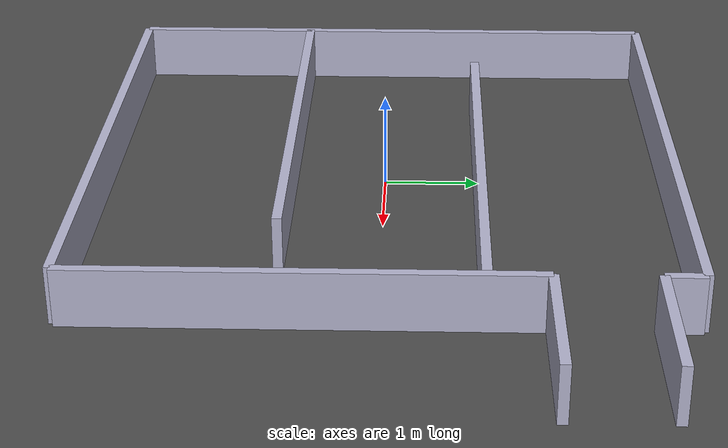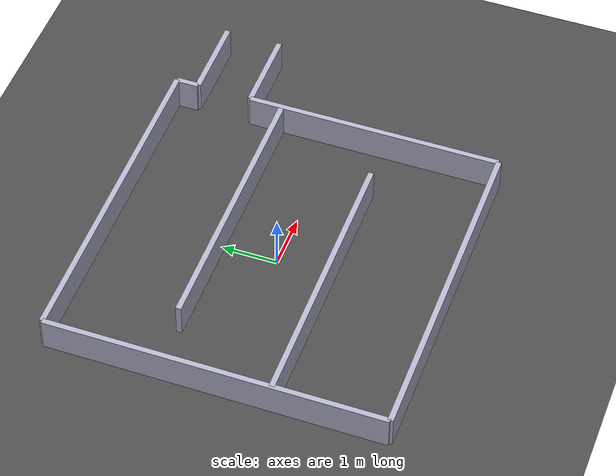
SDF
<?xml version="1.0"?>
<!-- Project 1: connected S-maze with an east exit; dimensions are metres. -->
<sdf version="1.8">
  <world name="project1_maze">
    <physics name="physics" type="ignored"><max_step_size>0.001</max_step_size><real_time_factor>1</real_time_factor></physics>
    <plugin filename="gz-sim-physics-system" name="gz::sim::systems::Physics"/>
    <plugin filename="gz-sim-user-commands-system" name="gz::sim::systems::UserCommands"/>
    <plugin filename="gz-sim-scene-broadcaster-system" name="gz::sim::systems::SceneBroadcaster"/>
    <plugin filename="gz-sim-sensors-system" name="gz::sim::systems::Sensors"><render_engine>ogre2</render_engine></plugin>
    <plugin filename="gz-sim-imu-system" name="gz::sim::systems::Imu"/>
    <scene><ambient>0.6 0.6 0.6 1</ambient><background>0.8 0.85 0.9 1</background><shadows>false</shadows></scene>
    <light name="sun" type="directional">
      <pose>0 0 10 0 0 0</pose><diffuse>0.8 0.8 0.8 1</diffuse>
      <specular>0.2 0.2 0.2 1</specular><direction>-0.3 0.1 -0.9</direction><cast_shadows>false</cast_shadows>
      <attenuation><range>1000</range><constant>0.9</constant><linear>0.01</linear><quadratic>0.001</quadratic></attenuation>
    </light>
    <model name="ground">
      <static>true</static>
      <link name="ground">
        <collision name="collision"><geometry><plane><normal>0 0 1</normal><size>30 30</size></plane></geometry></collision>
        <visual name="visual"><geometry><plane><normal>0 0 1</normal><size>30 30</size></plane></geometry>
          <material><ambient>0.3 0.3 0.3 1</ambient><diffuse>0.3 0.3 0.3 1</diffuse></material>
        </visual>
      </link>
    </model>
    <model name="south">
      <static>true</static>
      <pose>0 -3 0.3 0 0 0</pose>
      <link name="wall">
        <collision name="collision"><geometry><box><size>6 0.1 0.6</size></box></geometry></collision>
        <visual name="visual">
          <geometry><box><size>6 0.1 0.6</size></box></geometry>
          <material><ambient>0.7 0.7 0.8 1</ambient><diffuse>0.7 0.7 0.8 1</diffuse></material>
        </visual>
      </link>
    </model>
    <model name="west">
      <static>true</static>
      <pose>-3 0 0.3 0 0 0</pose>
      <link name="wall">
        <collision name="collision"><geometry><box><size>0.1 6 0.6</size></box></geometry></collision>
        <visual name="visual">
          <geometry><box><size>0.1 6 0.6</size></box></geometry>
          <material><ambient>0.7 0.7 0.8 1</ambient><diffuse>0.7 0.7 0.8 1</diffuse></material>
        </visual>
      </link>
    </model>
    <model name="north">
      <static>true</static>
      <pose>0 3 0.3 0 0 0</pose>
      <link name="wall">
        <collision name="collision"><geometry><box><size>6 0.1 0.6</size></box></geometry></collision>
        <visual name="visual">
          <geometry><box><size>6 0.1 0.6</size></box></geometry>
          <material><ambient>0.7 0.7 0.8 1</ambient><diffuse>0.7 0.7 0.8 1</diffuse></material>
        </visual>
      </link>
    </model>
    <model name="east_lower">
      <static>true</static>
      <pose>3 -0.7 0.3 0 0 0</pose>
      <link name="wall">
        <collision name="collision"><geometry><box><size>0.1 4.6 0.6</size></box></geometry></collision>
        <visual name="visual">
          <geometry><box><size>0.1 4.6 0.6</size></box></geometry>
          <material><ambient>0.7 0.7 0.8 1</ambient><diffuse>0.7 0.7 0.8 1</diffuse></material>
        </visual>
      </link>
    </model>
    <model name="east_upper">
      <static>true</static>
      <pose>3 2.8 0.3 0 0 0</pose>
      <link name="wall">
        <collision name="collision"><geometry><box><size>0.1 0.4 0.6</size></box></geometry></collision>
        <visual name="visual">
          <geometry><box><size>0.1 0.4 0.6</size></box></geometry>
          <material><ambient>0.7 0.7 0.8 1</ambient><diffuse>0.7 0.7 0.8 1</diffuse></material>
        </visual>
      </link>
    </model>
    <model name="divider_lower">
      <static>true</static>
      <pose>-0.5 -1 0.3 0 0 0</pose>
      <link name="wall">
        <collision name="collision"><geometry><box><size>5 0.1 0.6</size></box></geometry></collision>
        <visual name="visual">
          <geometry><box><size>5 0.1 0.6</size></box></geometry>
          <material><ambient>0.7 0.7 0.8 1</ambient><diffuse>0.7 0.7 0.8 1</diffuse></material>
        </visual>
      </link>
    </model>
    <model name="divider_upper">
      <static>true</static>
      <pose>0.5 1 0.3 0 0 0</pose>
      <link name="wall">
        <collision name="collision"><geometry><box><size>5 0.1 0.6</size></box></geometry></collision>
        <visual name="visual">
          <geometry><box><size>5 0.1 0.6</size></box></geometry>
          <material><ambient>0.7 0.7 0.8 1</ambient><diffuse>0.7 0.7 0.8 1</diffuse></material>
        </visual>
      </link>
    </model>
    <model name="exit_lower">
      <static>true</static>
      <pose>3.75 1.6 0.3 0 0 0</pose>
      <link name="wall">
        <collision name="collision"><geometry><box><size>1.5 0.1 0.6</size></box></geometry></collision>
        <visual name="visual">
          <geometry><box><size>1.5 0.1 0.6</size></box></geometry>
          <material><ambient>0.7 0.7 0.8 1</ambient><diffuse>0.7 0.7 0.8 1</diffuse></material>
        </visual>
      </link>
    </model>
    <model name="exit_upper">
      <static>true</static>
      <pose>3.75 2.6 0.3 0 0 0</pose>
      <link name="wall">
        <collision name="collision"><geometry><box><size>1.5 0.1 0.6</size></box></geometry></collision>
        <visual name="visual">
          <geometry><box><size>1.5 0.1 0.6</size></box></geometry>
          <material><ambient>0.7 0.7 0.8 1</ambient><diffuse>0.7 0.7 0.8 1</diffuse></material>
        </visual>
      </link>
    </model>
  </world>
</sdf>
